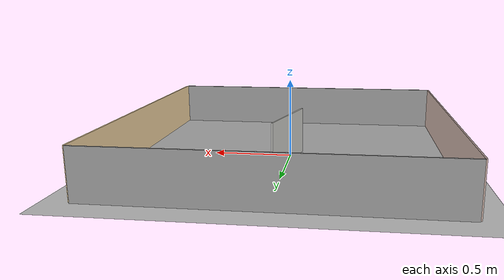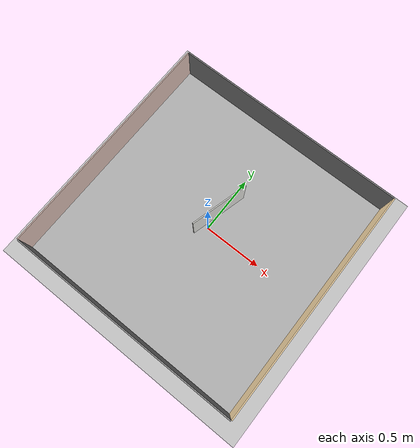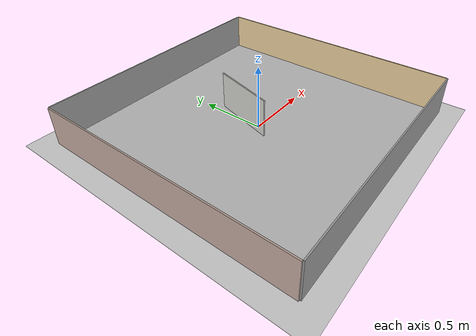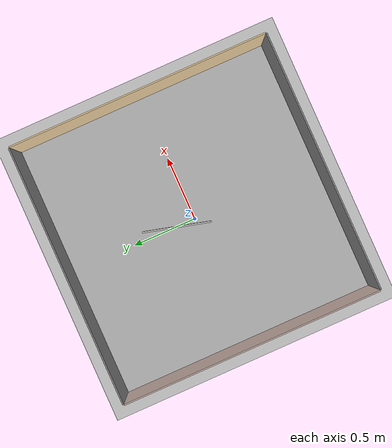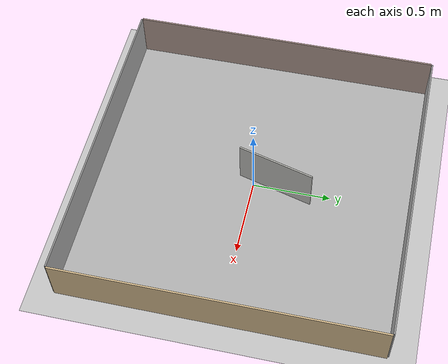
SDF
<sdf version="1.6">
 <world name="default">
  <gravity>0 0 -9.8</gravity>
  <magnetic_field>6e-06 2.3e-05 -4.2e-05</magnetic_field>
  <atmosphere type="adiabatic"/>
  <physics default="0" name="default_physics" type="ode">
   <max_step_size>0.001</max_step_size>
   <real_time_factor>1</real_time_factor>
   <real_time_update_rate>1000</real_time_update_rate>
  </physics>
  <scene><ambient>0.4 0.4 0.4 1</ambient><background>0.7 0.7 0.7 1</background><shadows>1</shadows></scene>
  <audio><device>default</device></audio>
  <spherical_coordinates>
   <surface_model>EARTH_WGS84</surface_model>
   <latitude_deg>0</latitude_deg>
   <longitude_deg>0</longitude_deg>
   <elevation>0</elevation>
   <heading_deg>0</heading_deg>
  </spherical_coordinates>
  <light name="sun" type="directional">
   <pose>0 0 10 0 -0 0</pose>
   <diffuse>0.8 0.8 0.8 1</diffuse>
   <specular>0.2 0.2 0.2 1</specular>
   <attenuation>
    <range>1000</range>
    <constant>0.9</constant>
    <linear>0.01</linear>
    <quadratic>0.001</quadratic>
   </attenuation>
   <direction>-0.5 0.1 -0.9</direction>
  </light>
  <include><uri>model://ground_plane</uri><name>ground_plane</name></include>
  <model name="pet_play_yard-03">
   <include><uri>model://pet_play_yard-floor03</uri><name>pet_play_yard-floor03</name></include>
   <link name="wall_obstacle-1">
    <pose>-0.000711 0.140953 0 0 -0 1.309</pose>
    <collision name="wall_obstacle-1_Collision">
     <geometry><box><size>0.5 0.01 0.3</size></box></geometry>
     <pose>0.00 0.00 0.15 0.0 -0.0 0.0</pose>
    </collision>
    <visual name="wall_obstacle-1_Visual">
     <pose>0.00 0.00 0.15 0 -0 0</pose>
     <geometry><box><size>0.5 0.01 0.3</size></box></geometry>
     <material>
      <script><uri>file://media/materials/scripts/gazebo.material</uri><name>Gazebo/CeilingTiled</name></script>
      <ambient>1 1 1 1</ambient>
     </material>
     <meta><layer>0</layer></meta>
    </visual>
   </link>
   <link name="wall_front">
    <pose>1.005 0.00 0.00 0 -0 -1.570796326795</pose>
    <collision name="wall_front_Collision">
     <geometry><box><size>2.0 0.01 0.3</size></box></geometry>
     <pose>0.00 0.00 0.15 0 -0 0</pose>
    </collision>
    <visual name="wall_front_Visual">
     <pose>0.00 0.00 0.15 0 -0 0</pose>
     <geometry><box><size>2.0 0.01 0.3</size></box></geometry>
     <material>
      <script><uri>file://media/materials/scripts/gazebo.material</uri><name>Gazebo/Grey</name></script>
      <ambient>0.921569 0.807843 0.615686 1</ambient>
     </material>
     <meta><layer>0</layer></meta>
    </visual>
   </link>
   <link name="wall_right">
    <pose>0.0 -1.005 0.0 0 -0 3.14159265359</pose>
    <collision name="wall_right_Collision">
     <geometry><box><size>2.0 0.01 0.3</size></box></geometry>
     <pose>0.00 0.00 0.15 0 -0 0</pose>
    </collision>
    <visual name="wall_right_Visual">
     <pose>0.00 0.00 0.15 0 -0 0</pose>
     <geometry><box><size>2.0 0.01 0.3</size></box></geometry>
     <material>
      <script><uri>file://media/materials/scripts/gazebo.material</uri><name>Gazebo/Grey</name></script>
      <ambient>1 1 1 1</ambient>
     </material>
     <meta><layer>0</layer></meta>
    </visual>
   </link>
   <link name="wall_rear">
    <pose>-1.005 0.00 0.00 0 -0 1.570796326795</pose>
    <collision name="wall_rear_Collision">
     <geometry><box><size>2.0 0.01 0.3</size></box></geometry>
     <pose>0.00 0.00 0.15 0 -0 0</pose>
    </collision>
    <visual name="wall_rear_Visual">
     <pose>0.00 0.00 0.15 0 -0 0</pose>
     <geometry><box><size>2.0 0.01 0.3</size></box></geometry>
     <material>
      <script><uri>file://media/materials/scripts/gazebo.material</uri><name>Gazebo/Grey</name></script>
      <ambient>0.760784 0.662745 0.627451 1</ambient>
     </material>
     <meta><layer>0</layer></meta>
    </visual>
   </link>
   <link name="wall_left">
    <pose>0.0 1.005 0.00 0 -0 0</pose>
    <collision name="wall_left_Collision">
     <geometry><box><size>2.0 0.01 0.3</size></box></geometry>
     <pose>0.00 0.00 0.15 0 -0 0</pose>
    </collision>
    <visual name="wall_left_Visual">
     <pose>0.00 0.00 0.15 0 -0 0</pose>
     <geometry><box><size>2.0 0.01 0.3</size></box></geometry>
     <material>
      <script><uri>file://media/materials/scripts/gazebo.material</uri><name>Gazebo/Grey</name></script>
      <ambient>1 1 1 1</ambient>
     </material>
     <meta><layer>0</layer></meta>
    </visual>
   </link>
   <static>1</static>
  </model>
 </world>
</sdf>

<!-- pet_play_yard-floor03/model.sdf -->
<sdf version="1.5">
  <model name="pet_play_yard-floor03">
    <!-- Floorimage "up" = "-x" -->
    <pose>0 0 0 0 0 0</pose>
    <link name="pet_play_yard-floor03_floor">
      <pose>0 0 0 0 0 3.1415</pose>

      <visual name="visual_floor">
        <geometry>
          <box>
            <!-- Floor size = 2x2m -->
            <size>2.0 2.0 1e-5</size>
          </box>
        </geometry>

        <material>
          <script>
            <uri>model://pet_play_yard-floor03/materials/scripts</uri>
            <uri>model://pet_play_yard-floor03/materials/textures</uri>
            <name>pet_play_yard-floor03</name>
          </script>
        </material>
        <pose>0 0 0.001 0 0 0</pose>
        <cast_shadows>1</cast_shadows>
        <transparency>0</transparency>
      </visual>

      <collision name="collision_floor">
        <pose>0 0 0.001 0 0 0</pose>
        <geometry>
          <box>
            <!-- Floor size = 2x2m -->
            <size>2.0 2.0 1e-5</size>
          </box>
        </geometry>
      </collision>

    </link>

    <static>1</static>
    <allow_auto_disable>1</allow_auto_disable>

  </model>
</sdf>
